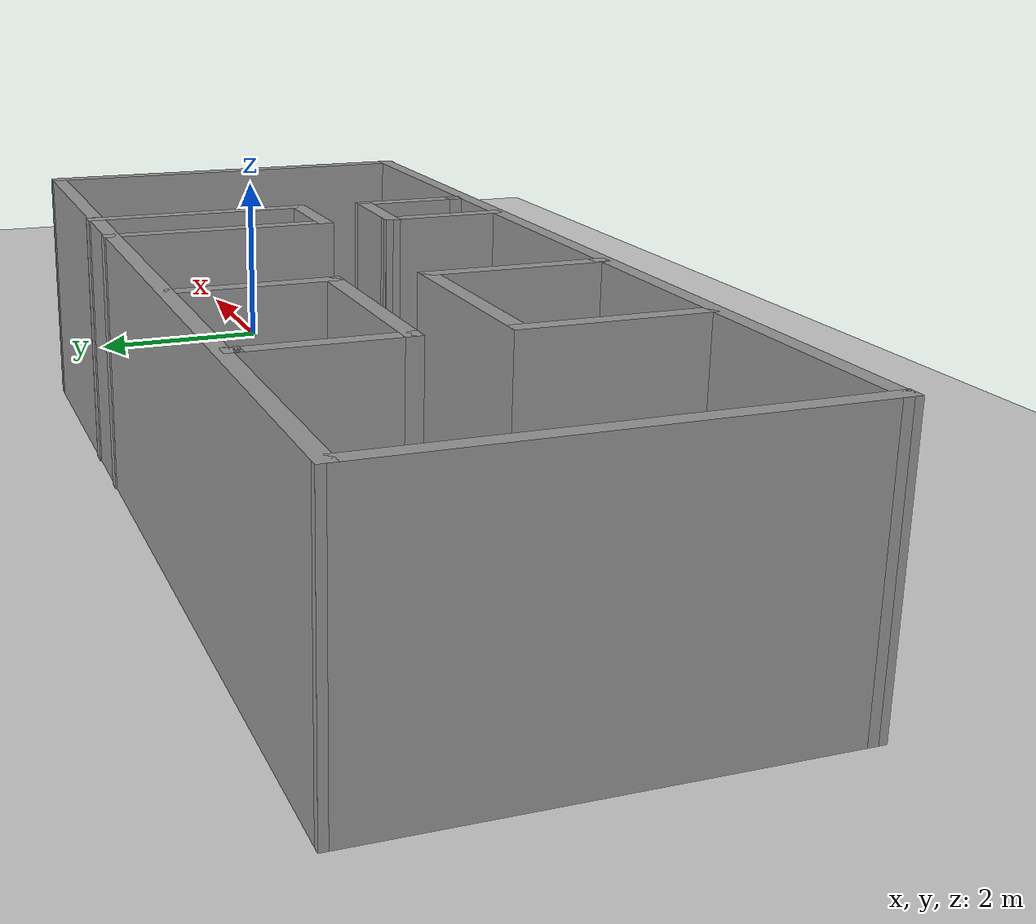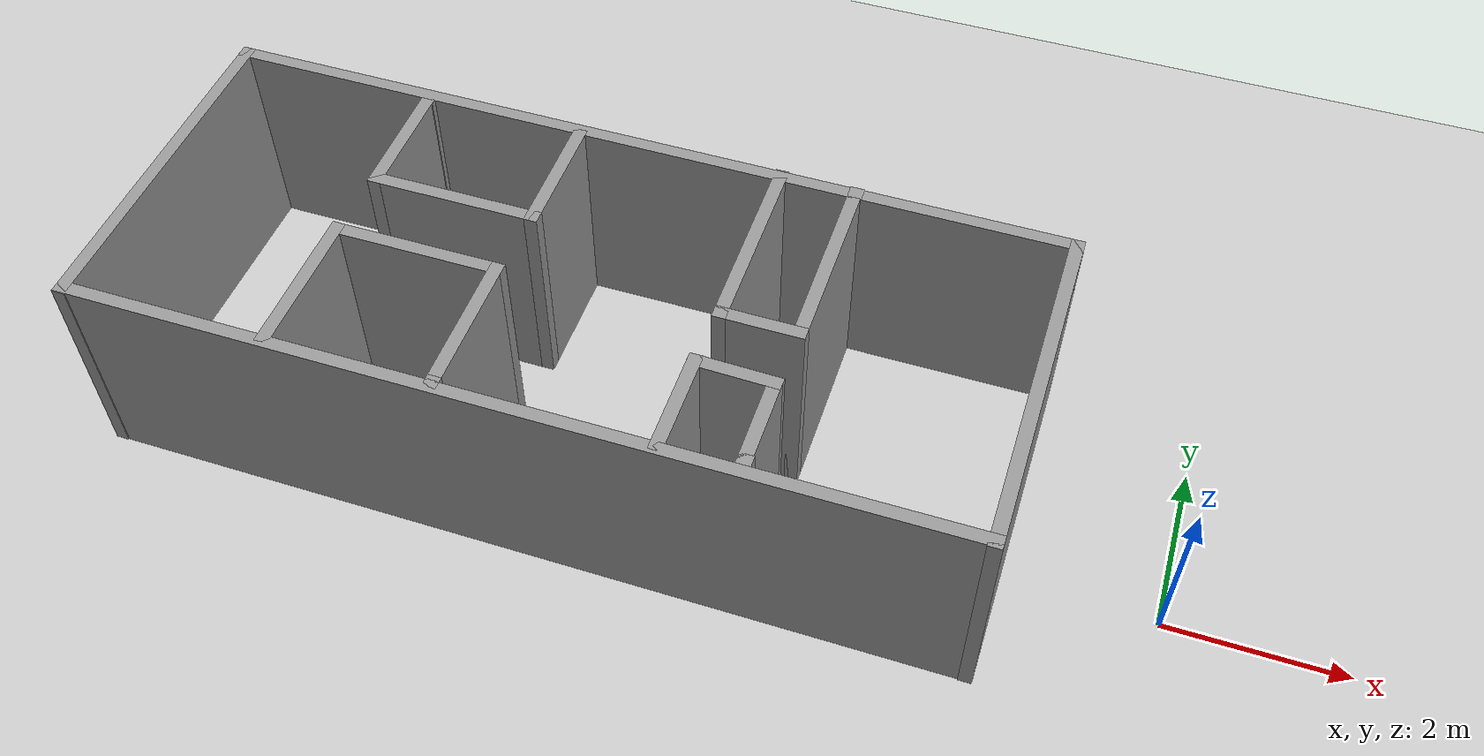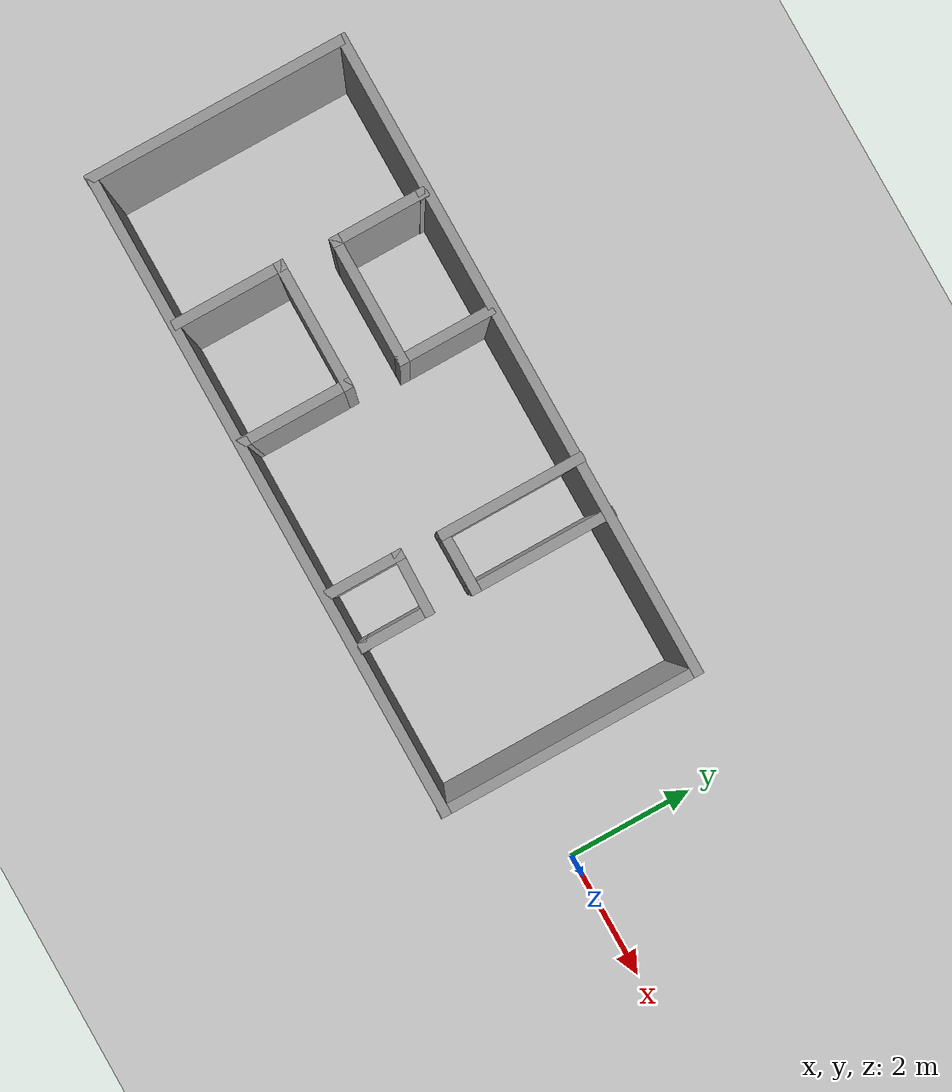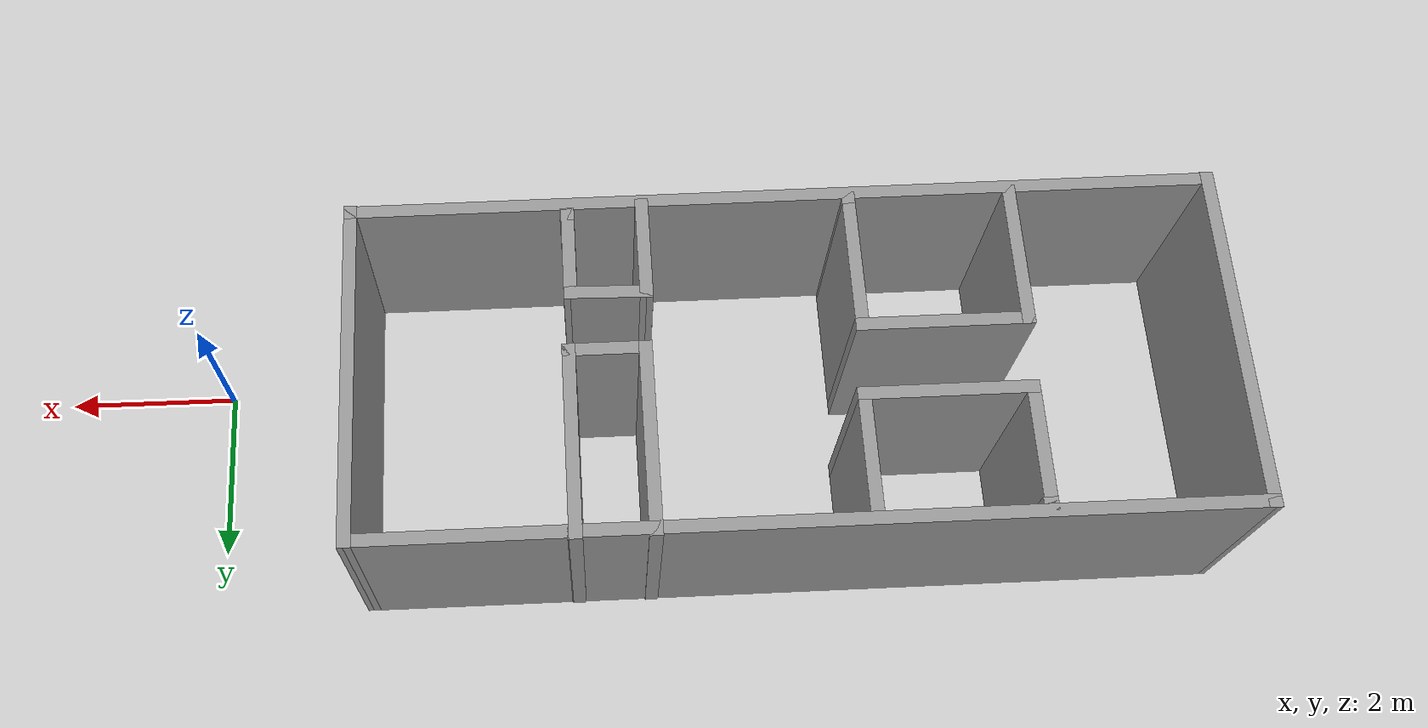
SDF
<sdf version="1.6">
 <world name="default">
  <light name="sun" type="directional">
   <pose>0 0 10 0 -0 0</pose>
   <diffuse>0.8 0.8 0.8 1</diffuse>
   <specular>0.1 0.1 0.1 1</specular>
   <attenuation>
    <range>1000</range>
    <constant>0.9</constant>
    <linear>0.01</linear>
    <quadratic>0.001</quadratic>
   </attenuation>
   <direction>-0.5 0.5 -1</direction>
  </light>
  <model name="ground_plane">
   <static>1</static>
   <link name="link">
    <collision name="collision">
     <geometry><plane><normal>0 0 1</normal><size>100 100</size></plane></geometry>
     <surface><friction><ode><mu>100</mu><mu2>50</mu2></ode></friction></surface>
    </collision>
    <visual name="visual">
     <cast_shadows>0</cast_shadows>
     <geometry><plane><normal>0 0 1</normal><size>100 100</size></plane></geometry>
     <material>
      <script><uri>file://media/materials/scripts/gazebo.material</uri><name>Gazebo/Grey</name></script>
     </material>
    </visual>
   </link>
  </model>
  <gravity>0 0 -9.8</gravity>
  <magnetic_field>6e-06 2.3e-05 -4.2e-05</magnetic_field>
  <atmosphere type="adiabatic"/>
  <physics name="default_physics" default="0" type="ode">
   <max_step_size>0.001</max_step_size>
   <real_time_factor>1</real_time_factor>
   <real_time_update_rate>1000</real_time_update_rate>
  </physics>
  <scene><ambient>0.4 0.4 0.4 1</ambient><background>0.7 0.7 0.7 1</background><shadows>1</shadows></scene>
  <spherical_coordinates>
   <surface_model>EARTH_WGS84</surface_model>
   <latitude_deg>0</latitude_deg>
   <longitude_deg>0</longitude_deg>
   <elevation>0</elevation>
   <heading_deg>0</heading_deg>
  </spherical_coordinates>
  <model name="corridor2">
   <pose>-6.70906 0.747047 0 0 -0 0</pose>
   <link name="Wall_0">
    <collision name="Wall_0_Collision">
     <geometry><box><size>10 0.15 2.5</size></box></geometry>
     <pose>0 0 1.25 0 -0 0</pose>
    </collision>
    <visual name="Wall_0_Visual">
     <pose>0 0 1.25 0 -0 0</pose>
     <geometry><box><size>10 0.15 2.5</size></box></geometry>
     <material>
      <script><uri>file://media/materials/scripts/gazebo.material</uri><name>Gazebo/Grey</name></script>
      <ambient>1 1 1 1</ambient>
     </material>
    </visual>
    <pose>0.004055 1.95295 0 0 -0 3.14159</pose>
   </link>
   <link name="Wall_1">
    <collision name="Wall_1_Collision">
     <geometry><box><size>4.07026 0.15 2.5</size></box></geometry>
     <pose>0 0 1.25 0 -0 0</pose>
    </collision>
    <visual name="Wall_1_Visual">
     <pose>0 0 1.25 0 -0 0</pose>
     <geometry><box><size>4.07026 0.15 2.5</size></box></geometry>
     <material>
      <script><uri>file://media/materials/scripts/gazebo.material</uri><name>Gazebo/Grey</name></script>
      <ambient>1 1 1 1</ambient>
     </material>
    </visual>
    <pose>-4.925 -0.007172 0 0 0 -1.57286</pose>
   </link>
   <link name="Wall_10">
    <collision name="Wall_10_Collision">
     <geometry><box><size>2 0.15 2.5</size></box></geometry>
     <pose>0 0 1.25 0 -0 0</pose>
    </collision>
    <visual name="Wall_10_Visual">
     <pose>0 0 1.25 0 -0 0</pose>
     <geometry><box><size>2 0.15 2.5</size></box></geometry>
     <material>
      <script><uri>file://media/materials/scripts/gazebo.material</uri><name>Gazebo/Grey</name></script>
      <ambient>1 1 1 1</ambient>
     </material>
    </visual>
    <pose>-1.62844 0.529953 0 0 -0 0</pose>
   </link>
   <link name="Wall_11">
    <collision name="Wall_11_Collision">
     <geometry><box><size>1.5 0.15 2.5</size></box></geometry>
     <pose>0 0 1.25 0 -0 0</pose>
    </collision>
    <visual name="Wall_11_Visual">
     <pose>0 0 1.25 0 -0 0</pose>
     <geometry><box><size>1.5 0.15 2.5</size></box></geometry>
     <material>
      <script><uri>file://media/materials/scripts/gazebo.material</uri><name>Gazebo/Grey</name></script>
      <ambient>1 1 1 1</ambient>
     </material>
    </visual>
    <pose>-0.703445 1.20495 0 0 -0 1.5708</pose>
   </link>
   <link name="Wall_13">
    <collision name="Wall_13_Collision">
     <geometry><box><size>1.75 0.15 2.5</size></box></geometry>
     <pose>0 0 1.25 0 -0 0</pose>
    </collision>
    <visual name="Wall_13_Visual">
     <pose>0 0 1.25 0 -0 0</pose>
     <geometry><box><size>1.75 0.15 2.5</size></box></geometry>
     <material>
      <script><uri>file://media/materials/scripts/gazebo.material</uri><name>Gazebo/Grey</name></script>
      <ambient>1 1 1 1</ambient>
     </material>
    </visual>
    <pose>-2.62244 -1.09655 0 0 -0 1.5708</pose>
   </link>
   <link name="Wall_14">
    <collision name="Wall_14_Collision">
     <geometry><box><size>2 0.15 2.5</size></box></geometry>
     <pose>0 0 1.25 0 -0 0</pose>
    </collision>
    <visual name="Wall_14_Visual">
     <pose>0 0 1.25 0 -0 0</pose>
     <geometry><box><size>2 0.15 2.5</size></box></geometry>
     <material>
      <script><uri>file://media/materials/scripts/gazebo.material</uri><name>Gazebo/Grey</name></script>
      <ambient>1 1 1 1</ambient>
     </material>
    </visual>
    <pose>-1.69744 -0.296547 0 0 -0 0</pose>
   </link>
   <link name="Wall_15">
    <collision name="Wall_15_Collision">
     <geometry><box><size>1.75 0.15 2.5</size></box></geometry>
     <pose>0 0 1.25 0 -0 0</pose>
    </collision>
    <visual name="Wall_15_Visual">
     <pose>0 0 1.25 0 -0 0</pose>
     <geometry><box><size>1.75 0.15 2.5</size></box></geometry>
     <material>
      <script><uri>file://media/materials/scripts/gazebo.material</uri><name>Gazebo/Grey</name></script>
      <ambient>1 1 1 1</ambient>
     </material>
    </visual>
    <pose>-0.772445 -1.09655 0 0 0 -1.5708</pose>
   </link>
   <link name="Wall_16">
    <collision name="Wall_16_Collision">
     <geometry><box><size>0.15 0.15 2.5</size></box></geometry>
     <pose>0 0 1.25 0 -0 0</pose>
    </collision>
    <visual name="Wall_16_Visual">
     <pose>0 0 1.25 0 -0 0</pose>
     <geometry><box><size>0.15 0.15 2.5</size></box></geometry>
     <material>
      <script><uri>file://media/materials/scripts/gazebo.material</uri><name>Gazebo/Grey</name></script>
      <ambient>1 1 1 1</ambient>
     </material>
    </visual>
    <pose>-0.772445 -1.89655 0 0 -0 0</pose>
   </link>
   <link name="Wall_2">
    <collision name="Wall_2_Collision">
     <geometry><box><size>10 0.15 2.5</size></box></geometry>
     <pose>0 0 1.25 0 -0 0</pose>
    </collision>
    <visual name="Wall_2_Visual">
     <pose>0 0 1.25 0 -0 0</pose>
     <geometry><box><size>10 0.15 2.5</size></box></geometry>
     <material>
      <script><uri>file://media/materials/scripts/gazebo.material</uri><name>Gazebo/Grey</name></script>
      <ambient>1 1 1 1</ambient>
     </material>
    </visual>
    <pose>-0.004055 -1.9573 0 0 -0 0</pose>
   </link>
   <link name="Wall_23">
    <collision name="Wall_23_Collision">
     <geometry><box><size>2.25 0.15 2.5</size></box></geometry>
     <pose>0 0 1.25 0 -0 0</pose>
    </collision>
    <visual name="Wall_23_Visual">
     <pose>0 0 1.25 0 -0 0</pose>
     <geometry><box><size>2.25 0.15 2.5</size></box></geometry>
     <material>
      <script><uri>file://media/materials/scripts/gazebo.material</uri><name>Gazebo/Grey</name></script>
      <ambient>1 1 1 1</ambient>
     </material>
    </visual>
    <pose>1.64406 0.917453 0 0 0 -1.5708</pose>
   </link>
   <link name="Wall_24">
    <collision name="Wall_24_Collision">
     <geometry><box><size>1 0.15 2.5</size></box></geometry>
     <pose>0 0 1.25 0 -0 0</pose>
    </collision>
    <visual name="Wall_24_Visual">
     <pose>0 0 1.25 0 -0 0</pose>
     <geometry><box><size>1 0.15 2.5</size></box></geometry>
     <material>
      <script><uri>file://media/materials/scripts/gazebo.material</uri><name>Gazebo/Grey</name></script>
      <ambient>1 1 1 1</ambient>
     </material>
    </visual>
    <pose>2.06906 -0.132547 0 0 -0 0</pose>
   </link>
   <link name="Wall_25">
    <collision name="Wall_25_Collision">
     <geometry><box><size>2.25 0.15 2.5</size></box></geometry>
     <pose>0 0 1.25 0 -0 0</pose>
    </collision>
    <visual name="Wall_25_Visual">
     <pose>0 0 1.25 0 -0 0</pose>
     <geometry><box><size>2.25 0.15 2.5</size></box></geometry>
     <material>
      <script><uri>file://media/materials/scripts/gazebo.material</uri><name>Gazebo/Grey</name></script>
      <ambient>1 1 1 1</ambient>
     </material>
    </visual>
    <pose>2.49405 0.917453 0 0 -0 1.5708</pose>
   </link>
   <link name="Wall_26">
    <collision name="Wall_26_Collision">
     <geometry><box><size>0.16 0.15 2.5</size></box></geometry>
     <pose>0 0 1.25 0 -0 0</pose>
    </collision>
    <visual name="Wall_26_Visual">
     <pose>0 0 1.25 0 -0 0</pose>
     <geometry><box><size>0.16 0.15 2.5</size></box></geometry>
     <material>
      <script><uri>file://media/materials/scripts/gazebo.material</uri><name>Gazebo/Grey</name></script>
      <ambient>1 1 1 1</ambient>
     </material>
    </visual>
    <pose>2.49905 1.96745 0 0 -0 0</pose>
   </link>
   <link name="Wall_3">
    <collision name="Wall_3_Collision">
     <geometry><box><size>4.07026 0.15 2.5</size></box></geometry>
     <pose>0 0 1.25 0 -0 0</pose>
    </collision>
    <visual name="Wall_3_Visual">
     <pose>0 0 1.25 0 -0 0</pose>
     <geometry><box><size>4.07026 0.15 2.5</size></box></geometry>
     <material>
      <script><uri>file://media/materials/scripts/gazebo.material</uri><name>Gazebo/Grey</name></script>
      <ambient>1 1 1 1</ambient>
     </material>
    </visual>
    <pose>4.925 -0.007172 0 0 -0 1.56873</pose>
   </link>
   <link name="Wall_31">
    <collision name="Wall_31_Collision">
     <geometry><box><size>1.25 0.15 2.5</size></box></geometry>
     <pose>0 0 1.25 0 -0 0</pose>
    </collision>
    <visual name="Wall_31_Visual">
     <pose>0 0 1.25 0 -0 0</pose>
     <geometry><box><size>1.25 0.15 2.5</size></box></geometry>
     <material>
      <script><uri>file://media/materials/scripts/gazebo.material</uri><name>Gazebo/Grey</name></script>
      <ambient>1 1 1 1</ambient>
     </material>
    </visual>
    <pose>1.59806 -1.36205 0 0 -0 1.5708</pose>
   </link>
   <link name="Wall_32">
    <collision name="Wall_32_Collision">
     <geometry><box><size>1.00021 0.15 2.5</size></box></geometry>
     <pose>0 0 1.25 0 -0 0</pose>
    </collision>
    <visual name="Wall_32_Visual">
     <pose>0 0 1.25 0 -0 0</pose>
     <geometry><box><size>1.00021 0.15 2.5</size></box></geometry>
     <material>
      <script><uri>file://media/materials/scripts/gazebo.material</uri><name>Gazebo/Grey</name></script>
      <ambient>1 1 1 1</ambient>
     </material>
    </visual>
    <pose>2.02305 -0.821547 0 0 0 -0.022349</pose>
   </link>
   <link name="Wall_33">
    <collision name="Wall_33_Collision">
     <geometry><box><size>1.135 0.15 2.5</size></box></geometry>
     <pose>0 0 1.25 0 -0 0</pose>
    </collision>
    <visual name="Wall_33_Visual">
     <pose>0 0 1.25 0 -0 0</pose>
     <geometry><box><size>1.135 0.15 2.5</size></box></geometry>
     <material>
      <script><uri>file://media/materials/scripts/gazebo.material</uri><name>Gazebo/Grey</name></script>
      <ambient>1 1 1 1</ambient>
     </material>
    </visual>
    <pose>2.44806 -1.32355 0 0 0 -1.5708</pose>
   </link>
   <link name="Wall_34">
    <collision name="Wall_34_Collision">
     <geometry><box><size>0.16 0.15 2.5</size></box></geometry>
     <pose>0 0 1.25 0 -0 0</pose>
    </collision>
    <visual name="Wall_34_Visual">
     <pose>0 0 1.25 0 -0 0</pose>
     <geometry><box><size>0.16 0.15 2.5</size></box></geometry>
     <material>
      <script><uri>file://media/materials/scripts/gazebo.material</uri><name>Gazebo/Grey</name></script>
      <ambient>1 1 1 1</ambient>
     </material>
    </visual>
    <pose>2.45305 -1.82755 0 0 -0 0</pose>
   </link>
   <link name="Wall_5">
    <collision name="Wall_5_Collision">
     <geometry><box><size>1.5 0.15 2.5</size></box></geometry>
     <pose>0 0 1.25 0 -0 0</pose>
    </collision>
    <visual name="Wall_5_Visual">
     <pose>0 0 1.25 0 -0 0</pose>
     <geometry><box><size>1.5 0.15 2.5</size></box></geometry>
     <material>
      <script><uri>file://media/materials/scripts/gazebo.material</uri><name>Gazebo/Grey</name></script>
      <ambient>1 1 1 1</ambient>
     </material>
    </visual>
    <pose>-2.55344 1.20495 0 0 -0 1.5708</pose>
   </link>
   <link name="Wall_6">
    <collision name="Wall_6_Collision">
     <geometry><box><size>0.16 0.15 2.5</size></box></geometry>
     <pose>0 0 1.25 0 -0 0</pose>
    </collision>
    <visual name="Wall_6_Visual">
     <pose>0 0 1.25 0 -0 0</pose>
     <geometry><box><size>0.16 0.15 2.5</size></box></geometry>
     <material>
      <script><uri>file://media/materials/scripts/gazebo.material</uri><name>Gazebo/Grey</name></script>
      <ambient>1 1 1 1</ambient>
     </material>
    </visual>
    <pose>-2.54844 1.87995 0 0 -0 0</pose>
   </link>
   <static>1</static>
  </model>
 </world>
</sdf>
